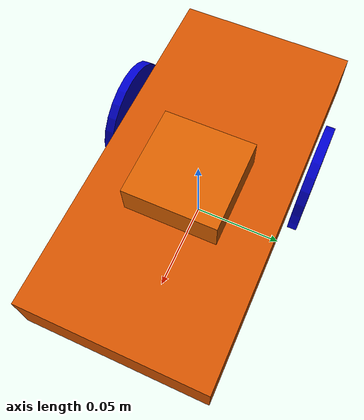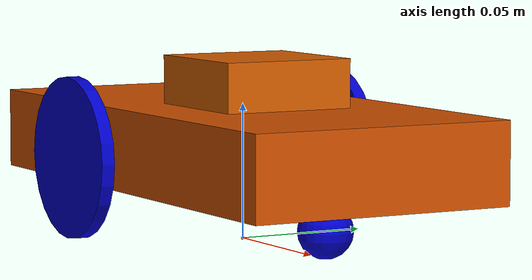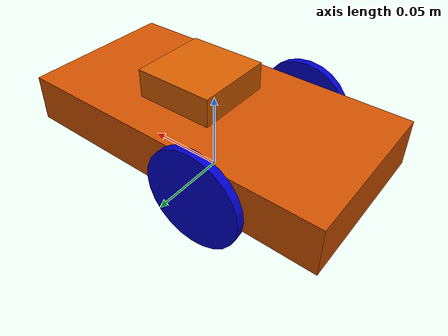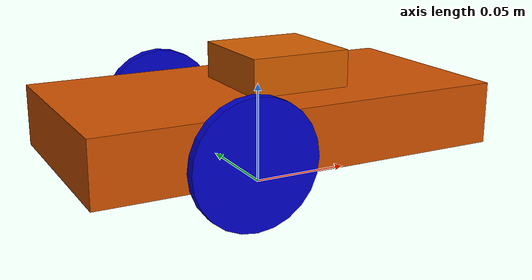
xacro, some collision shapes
<?xml version="1.0"?>
<robot xmlns:xacro="http://www.ros.org/wiki/xacro" name="mybot">

  <xacro:property name="base_width" value="0.1"/>
  <xacro:property name="base_len" value="0.2"/>
  <xacro:property name="base_height" value="0.03"/>
  <xacro:property name="wheel_radius" value="0.03"/>
  <xacro:property name="base_wheel_gap" value="0.005"/>
  <xacro:property name="wheel_separation" value="0.2"/>

  <xacro:property name="caster_wheel_radius" value="0.01"/>
  <xacro:property name="caster_wheel_mass" value="1"/>
  <xacro:property name="wheel_mass" value="1"/>
  <xacro:property name="base_mass" value="5"/>

  <xacro:include filename="$(find my_bot)/urdf/mybot_gazebo_plugins.xacro"/>

  <!--Color Properties-->
  <material name="blue">
    <color rgba="0 0 0.8 1"/>
  </material>
  <material name="red">
    <color rgba="0.8 0.0 0.0 1.0"/>
  </material>
  <material name="orange">
    <color rgba="0.82 0.32 0.0 1"/>
  </material>
  <material name="green">
    <color rgba="0.12 0.70 0.0 1"/>
  </material>

  <!--Interial macros-->
  <xacro:macro name="cylinder_inertia" params="m r h">
    <inertial>
      <mass value="${m}"/>
      <inertia ixx="${m*(3*r*r+h*h)/12}" ixy = "0" ixz = "0" iyy="${m*(3*r*r+h*h)/12}" iyz = "0" izz="${m*r*r/2}"/>
    </inertial>
  </xacro:macro>

  <xacro:macro name="box_inertia" params="m w h d">
    <inertial>
      <mass value="${m}"/>
      <inertia ixx="${m / 12.0 * (d*d + h*h)}" ixy="0.0" ixz="0.0" iyy="${m / 12.0 * (w*w + h*h)}" iyz="0.0" izz="${m / 12.0 * (w*w + d*d)}"/>
    </inertial>
  </xacro:macro>

  <xacro:macro name="sphere_inertia" params="m r">
    <inertial>
      <mass value="${m}"/>
      <inertia ixx="${2.0*m*(r*r)/5.0}" ixy="0.0" ixz="0.0" iyy="${2.0*m*(r*r)/5.0}" iyz="0.0" izz="${2.0*m*(r*r)/5.0}"/>
    </inertial>
  </xacro:macro>

  <!--Base Footprint-->
  <link name="base_footprint">
    <!--xacro:box_inertia m="10" w="0.001" h="0.001" d="0.001"/-->
    <visual>
        <origin xyz="0 0 0" rpy="0 0 0" />
        <geometry>
            <box size="0.001 0.001 0.001" />
        </geometry>
    </visual>
  </link>

  <!--Base link-->
  <link name="base_link">
    <xacro:box_inertia m="${base_mass}" w="${base_len}" h="${base_width}" d="${base_height}"/>
    <visual>
      <origin xyz="0 0 0.035" rpy="0 0 0" />
      <geometry>
        <box size="${base_len} ${base_width} ${base_height}"/>
      </geometry>
      <material name="orange"/>
    </visual>
    <collision>
      <geometry>
        <box size="${base_len} ${base_width} ${base_height}"/>
      </geometry>
    </collision>
  </link>

  <gazebo reference="base_link">
    <material>Gazebo/Orange</material>
  </gazebo>

  <!--base_link to base_footprint Joint-->
  <joint name="base_link_joint" type="fixed">
    <origin xyz="0 0 0" rpy="0 0 0" />
    <parent link="base_footprint"/>
    <child link="base_link" />
  </joint>

  <!--Caster Wheel Link-->
  <link name="caster_wheel">
    <visual>
      <origin xyz="0.03 0 0.005" rpy="0 0 0"/>
      <geometry>
        <sphere radius="${caster_wheel_radius}"/>
      </geometry>
      <material name="blue"/>
    </visual>
    <collision>
      <origin xyz="0.03 0 0.005" rpy="0 0 0"/>
      <geometry>
        <sphere radius="${caster_wheel_radius}"/>
      </geometry>
    </collision>
    <xacro:sphere_inertia m="${caster_wheel_mass}" r="${caster_wheel_radius}"/>
  </link>

  <gazebo reference="caster_wheel">
    <material>Gazebo/Blue</material>
  </gazebo>

  <!--Caster Wheel Joint-->
  <joint name="caster_wheel_joint" type="continuous">
    <axis xyz="0 1 0" rpy="0 0 0" />
    <parent link="base_link"/>
    <child link="caster_wheel"/>
    <origin xyz="0.03 0 0.005" rpy="0 0 0"/>
  </joint>

    <!--Wheel link & joint macro-->
  <xacro:macro name="wheel" params="prefix reflect">
    <link name="${prefix}_wheel">
      <visual>
        <origin xyz="-0.015 0 0.015" rpy="${pi/2} 0 0"/>
        <geometry>
          <cylinder radius="${wheel_radius}" length="0.005"/>
        </geometry>
        <material name="blue"/>
      </visual>
      <collision>
        <origin xyz="0 0 0" rpy="${pi/2} 0 0"/>
        <geometry>
          <cylinder radius="${wheel_radius}" length="0.005"/>
        </geometry>
      </collision>
      <xacro:cylinder_inertia m="${wheel_mass}" r="${wheel_radius}" h="0.005"/>
    </link>

  <gazebo reference="${prefix}_wheel">
    <material>Gazebo/Blue</material>
  </gazebo>

    <joint name="${prefix}_wheel_joint" type="continuous">
      <axis xyz="-0.06 1 0" rpy="0 0 0" />
      <parent link="base_link"/>
      <child link="${prefix}_wheel"/>
      <origin xyz="-0.015 ${((base_width/2)+base_wheel_gap)*reflect} 0.015" rpy="0 0 0"/>
    </joint>
  </xacro:macro>

  <!--Create Left & Right Back Wheel links/joints-->
  <xacro:wheel prefix="left_back" reflect="1"/>
  <xacro:wheel prefix="right_back" reflect="-1"/>

  <!-- Hokuyo Laser -->
  <link name="hokuyo_laser">
    <visual>
      <origin xyz="0.01 0 0.043" rpy="0 0 0"/>
      <geometry>
        <mesh filename="package://my_bot/meshes/hokuyo.dae"/>
      </geometry>
    </visual>
    <collision>
      <origin xyz="0 0 0" rpy="0 0 0"/>
      <geometry>
        <box size="0.05 0.05 0.05"/>
      </geometry>
    </collision>
    <xacro:box_inertia m="0.2" w="0.05" h="0.05" d="0.05"/>
  </link>

  <joint name="hokuyo_joint" type="fixed">
    <axis xyz="0 1 0" />
    <origin xyz="0.01 0 0.043" rpy="0 0 0"/>
    <parent link="base_link"/>
    <child link="hokuyo_laser"/>
  </joint>

</robot>
